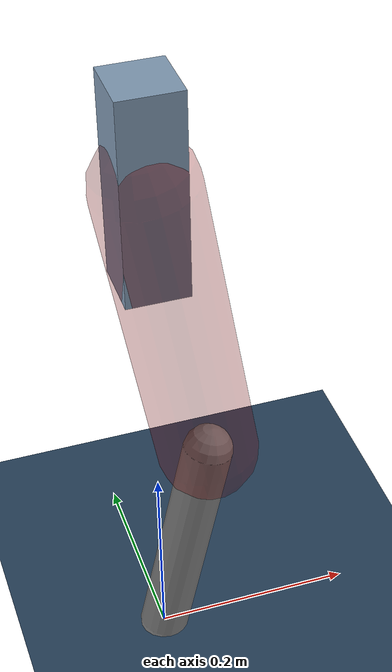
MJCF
<mujoco model="Hopper2D">
	<compiler inertiafromgeom="true" angle="radian" />
	<option timestep="0.001" integrator="implicit" cone="elliptic" solver="Newton" tolerance="1e-10" />

	<default>
		<geom contype="1" conaffinity="1" condim="3" friction="2 0.005 0.0001" solref="0.005 1" />
		<joint limited="true" damping="0.1" />
	</default>

	<asset>
		<texture name="skybox" type="skybox" builtin="gradient" rgb1=".4 .6 .8" rgb2="0 0 0" width="800" height="800" />
		<texture name="grid" type="2d" builtin="checker" rgb1=".1 .2 .3" rgb2=".2 .3 .4" width="300" height="300" mark="edge" markrgb=".2 .3 .4" />
		<material name="ground" texture="grid" texrepeat="1 1" texuniform="true" reflectance="0.1" />
		<material name="leg" rgba="0.5 0.6 0.7 1" />
	</asset>

	<worldbody>

		<geom name="floor" type="plane" size="5 5 0.25" material="ground" />

		<light directional="false" diffuse="0.8 0.8 0.8" specular="0.3 0.3 0.3" pos="0 0 2" dir="0 0 -1" />
		<light mode="targetbodycom" target="base" directional="false" diffuse="0.8 0.8 0.8" specular="0.3 0.3 0.3" pos="0 0 2" dir="0 0 -1" />

		<camera name="fixed" pos="0 -2 1" xyaxes="1 0 0 0 0 1" />
		<camera name="tracking" mode="trackcom" pos="0 -3 1" />

		<body name="root" pos="0 0 0.540916728735654">
			<joint name="slide_x" type="slide" axis="1 0 0" range="-100 100" />
			<joint name="slide_z" type="slide" axis="0 0 1" range="0 10" />

			<body name="base" pos="0 0 0">
				<geom name="torso" type="box" size="0.03 0.03 0.1" mass="2.503" material="leg" />

				<body name="link1" pos="0 0 0" euler="0 1.4060763322055272 0">
					<joint type="hinge" axis="0 -1 0" pos="0 0 0" name="hinge1" limited="true" range="-3.14 3.14" stiffness="0" damping="0.1" />
					<geom name="thigh" type="capsule" fromto="0 0 0 0.3151638073933641 0 0" size="0.05" rgba="0.5 0 0 0.3" mass="1.0299586607014195" />

					<body name="link2" pos="0.3151638073933641 0 0" euler="0 0.38572444152203184 0">
						<joint type="hinge" axis="0 -1 0" pos="0 0 0" name="hinge2" limited="true" range="-3.14 3.14" stiffness="0" damping="0.1" />
						<geom name="shank" type="capsule" fromto="0 0 0 0.2357529213422899 0 0" size="0.025" mass="0.4307776292080609" />

					</body>
				</body>
			</body>
		</body>
	</worldbody>

	<actuator>
		<motor name="torque1" joint="hinge1" ctrlrange="-36.53006204689383 36.53006204689383" ctrllimited="true" gear="1" />
		<motor name="torque2" joint="hinge2" ctrlrange="-64.09331012429428 64.09331012429428" ctrllimited="true" gear="1" />
	</actuator>
</mujoco>
